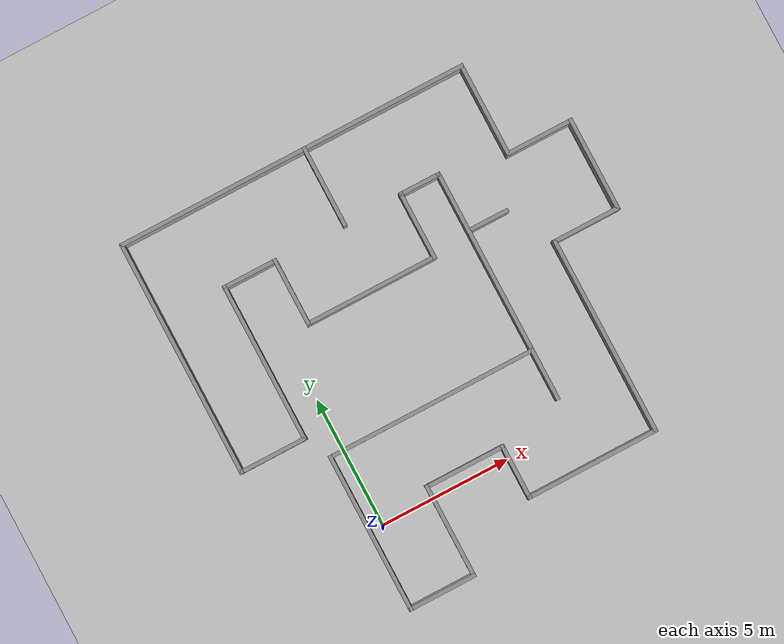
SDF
<sdf version="1.6">
 <world name="default">
  <light name="sun" type="directional">
   <pose>0 0 10 0 -0 0</pose>
   <diffuse>0.8 0.8 0.8 1</diffuse>
   <specular>0.1 0.1 0.1 1</specular>
   <attenuation>
    <range>1000</range>
    <constant>0.9</constant>
    <linear>0.01</linear>
    <quadratic>0.001</quadratic>
   </attenuation>
   <direction>-0.5 0.5 -1</direction>
  </light>
  <model name="ground_plane">
   <static>1</static>
   <link name="link">
    <collision name="collision">
     <geometry><plane><normal>0 0 1</normal><size>100 100</size></plane></geometry>
     <surface><friction><ode><mu>100</mu><mu2>50</mu2></ode></friction></surface>
    </collision>
    <visual name="visual">
     <cast_shadows>0</cast_shadows>
     <geometry><plane><normal>0 0 1</normal><size>100 100</size></plane></geometry>
     <material>
      <script><uri>file://media/materials/scripts/gazebo.material</uri><name>Gazebo/Grey</name></script>
     </material>
    </visual>
   </link>
  </model>
  <gravity>0 0 -9.8</gravity>
  <magnetic_field>6e-06 2.3e-05 -4.2e-05</magnetic_field>
  <atmosphere type="adiabatic"/>
  <physics name="default_physics" default="0" type="ode">
   <max_step_size>0.001</max_step_size>
   <real_time_factor>1</real_time_factor>
   <real_time_update_rate>1000</real_time_update_rate>
  </physics>
  <scene><ambient>0.4 0.4 0.4 1</ambient><background>0.7 0.7 0.7 1</background><shadows>1</shadows></scene>
  <spherical_coordinates>
   <surface_model>EARTH_WGS84</surface_model>
   <latitude_deg>0</latitude_deg>
   <longitude_deg>0</longitude_deg>
   <elevation>0</elevation>
   <heading_deg>0</heading_deg>
  </spherical_coordinates>
  <model name="Untitled2">
   <pose>4.5 4.99999 0 0 -0 0</pose>
   <link name="Wall_12">
    <collision name="Wall_12_Collision">
     <geometry><box><size>3.65 0.15 1</size></box></geometry>
     <pose>0 0 0.5 0 -0 0</pose>
    </collision>
    <visual name="Wall_12_Visual">
     <pose>0 0 0.5 0 -0 0</pose>
     <geometry><box><size>3.65 0.15 1</size></box></geometry>
     <material>
      <script><uri>file://media/materials/scripts/gazebo.material</uri><name>Gazebo/Grey</name></script>
      <ambient>1 1 1 1</ambient>
     </material>
    </visual>
    <pose>-2.5 -6.24999 0 0 0 -1.5708</pose>
   </link>
   <link name="Wall_14">
    <collision name="Wall_14_Collision">
     <geometry><box><size>2.65 0.15 1</size></box></geometry>
     <pose>0 0 0.5 0 -0 0</pose>
    </collision>
    <visual name="Wall_14_Visual">
     <pose>0 0 0.5 0 -0 0</pose>
     <geometry><box><size>2.65 0.15 1</size></box></geometry>
     <material>
      <script><uri>file://media/materials/scripts/gazebo.material</uri><name>Gazebo/Grey</name></script>
      <ambient>1 1 1 1</ambient>
     </material>
    </visual>
    <pose>-3.75 -7.99999 0 0 -0 3.14159</pose>
   </link>
   <link name="Wall_15">
    <collision name="Wall_15_Collision">
     <geometry><box><size>6.15003 0.15 1</size></box></geometry>
     <pose>0 0 0.5 0 -0 0</pose>
    </collision>
    <visual name="Wall_15_Visual">
     <pose>0 0 0.5 0 -0 0</pose>
     <geometry><box><size>6.15003 0.15 1</size></box></geometry>
     <material>
      <script><uri>file://media/materials/scripts/gazebo.material</uri><name>Gazebo/Grey</name></script>
      <ambient>1 1 1 1</ambient>
     </material>
    </visual>
    <pose>-5 -4.99999 0 0 -0 1.5708</pose>
   </link>
   <link name="Wall_18">
    <collision name="Wall_18_Collision">
     <geometry><box><size>8.15 0.15 1</size></box></geometry>
     <pose>0 0 0.5 0 -0 0</pose>
    </collision>
    <visual name="Wall_18_Visual">
     <pose>0 0 0.5 0 -0 0</pose>
     <geometry><box><size>8.15 0.15 1</size></box></geometry>
     <material>
      <script><uri>file://media/materials/scripts/gazebo.material</uri><name>Gazebo/Grey</name></script>
      <ambient>1 1 1 1</ambient>
     </material>
    </visual>
    <pose>-1 -1.99999 0 0 -0 0</pose>
   </link>
   <link name="Wall_19">
    <collision name="Wall_19_Collision">
     <geometry><box><size>7.15 0.15 1</size></box></geometry>
     <pose>0 0 0.5 0 -0 0</pose>
    </collision>
    <visual name="Wall_19_Visual">
     <pose>0 0 0.5 0 -0 0</pose>
     <geometry><box><size>7.15 0.15 1</size></box></geometry>
     <material>
      <script><uri>file://media/materials/scripts/gazebo.material</uri><name>Gazebo/Grey</name></script>
      <ambient>1 1 1 1</ambient>
     </material>
    </visual>
    <pose>3 1.50001 0 0 -0 1.5708</pose>
   </link>
   <link name="Wall_2">
    <collision name="Wall_2_Collision">
     <geometry><box><size>3.15 0.15 1</size></box></geometry>
     <pose>0 0 0.5 0 -0 0</pose>
    </collision>
    <visual name="Wall_2_Visual">
     <pose>0 0 0.5 0 -0 0</pose>
     <geometry><box><size>3.15 0.15 1</size></box></geometry>
     <material>
      <script><uri>file://media/materials/scripts/gazebo.material</uri><name>Gazebo/Grey</name></script>
      <ambient>1 1 1 1</ambient>
     </material>
    </visual>
    <pose>-1 -4.49999 0 0 -0 0</pose>
   </link>
   <link name="Wall_20">
    <collision name="Wall_20_Collision">
     <geometry><box><size>1.65 0.15 1</size></box></geometry>
     <pose>0 0 0.5 0 -0 0</pose>
    </collision>
    <visual name="Wall_20_Visual">
     <pose>0 0 0.5 0 -0 0</pose>
     <geometry><box><size>1.65 0.15 1</size></box></geometry>
     <material>
      <script><uri>file://media/materials/scripts/gazebo.material</uri><name>Gazebo/Grey</name></script>
      <ambient>1 1 1 1</ambient>
     </material>
    </visual>
    <pose>2.25 5.00001 0 0 -0 3.14159</pose>
   </link>
   <link name="Wall_21">
    <collision name="Wall_21_Collision">
     <geometry><box><size>2.65 0.15 1</size></box></geometry>
     <pose>0 0 0.5 0 -0 0</pose>
    </collision>
    <visual name="Wall_21_Visual">
     <pose>0 0 0.5 0 -0 0</pose>
     <geometry><box><size>2.65 0.15 1</size></box></geometry>
     <material>
      <script><uri>file://media/materials/scripts/gazebo.material</uri><name>Gazebo/Grey</name></script>
      <ambient>1 1 1 1</ambient>
     </material>
    </visual>
    <pose>1.5 3.75001 0 0 0 -1.5708</pose>
   </link>
   <link name="Wall_22">
    <collision name="Wall_22_Collision">
     <geometry><box><size>5.15 0.15 1</size></box></geometry>
     <pose>0 0 0.5 0 -0 0</pose>
    </collision>
    <visual name="Wall_22_Visual">
     <pose>0 0 0.5 0 -0 0</pose>
     <geometry><box><size>5.15 0.15 1</size></box></geometry>
     <material>
      <script><uri>file://media/materials/scripts/gazebo.material</uri><name>Gazebo/Grey</name></script>
      <ambient>1 1 1 1</ambient>
     </material>
    </visual>
    <pose>-1 2.50001 0 0 -0 3.14159</pose>
   </link>
   <link name="Wall_23">
    <collision name="Wall_23_Collision">
     <geometry><box><size>2.65 0.15 1</size></box></geometry>
     <pose>0 0 0.5 0 -0 0</pose>
    </collision>
    <visual name="Wall_23_Visual">
     <pose>0 0 0.5 0 -0 0</pose>
     <geometry><box><size>2.65 0.15 1</size></box></geometry>
     <material>
      <script><uri>file://media/materials/scripts/gazebo.material</uri><name>Gazebo/Grey</name></script>
      <ambient>1 1 1 1</ambient>
     </material>
    </visual>
    <pose>-3.5 3.75001 0 0 -0 1.5708</pose>
   </link>
   <link name="Wall_24">
    <collision name="Wall_24_Collision">
     <geometry><box><size>2.15 0.15 1</size></box></geometry>
     <pose>0 0 0.5 0 -0 0</pose>
    </collision>
    <visual name="Wall_24_Visual">
     <pose>0 0 0.5 0 -0 0</pose>
     <geometry><box><size>2.15 0.15 1</size></box></geometry>
     <material>
      <script><uri>file://media/materials/scripts/gazebo.material</uri><name>Gazebo/Grey</name></script>
      <ambient>1 1 1 1</ambient>
     </material>
    </visual>
    <pose>-4.5 5.00001 0 0 -0 3.14159</pose>
   </link>
   <link name="Wall_25">
    <collision name="Wall_25_Collision">
     <geometry><box><size>6.15 0.15 1</size></box></geometry>
     <pose>0 0 0.5 0 -0 0</pose>
    </collision>
    <visual name="Wall_25_Visual">
     <pose>0 0 0.5 0 -0 0</pose>
     <geometry><box><size>6.15 0.15 1</size></box></geometry>
     <material>
      <script><uri>file://media/materials/scripts/gazebo.material</uri><name>Gazebo/Grey</name></script>
      <ambient>1 1 1 1</ambient>
     </material>
    </visual>
    <pose>-5.5 2.00001 0 0 0 -1.5708</pose>
   </link>
   <link name="Wall_26">
    <collision name="Wall_26_Collision">
     <geometry><box><size>2.65 0.15 1</size></box></geometry>
     <pose>0 0 0.5 0 -0 0</pose>
    </collision>
    <visual name="Wall_26_Visual">
     <pose>0 0 0.5 0 -0 0</pose>
     <geometry><box><size>2.65 0.15 1</size></box></geometry>
     <material>
      <script><uri>file://media/materials/scripts/gazebo.material</uri><name>Gazebo/Grey</name></script>
      <ambient>1 1 1 1</ambient>
     </material>
    </visual>
    <pose>-6.75 -0.999993 0 0 -0 3.14159</pose>
   </link>
   <link name="Wall_27">
    <collision name="Wall_27_Collision">
     <geometry><box><size>9.15 0.15 1</size></box></geometry>
     <pose>0 0 0.5 0 -0 0</pose>
    </collision>
    <visual name="Wall_27_Visual">
     <pose>0 0 0.5 0 -0 0</pose>
     <geometry><box><size>9.15 0.15 1</size></box></geometry>
     <material>
      <script><uri>file://media/materials/scripts/gazebo.material</uri><name>Gazebo/Grey</name></script>
      <ambient>1 1 1 1</ambient>
     </material>
    </visual>
    <pose>-8 3.50001 0 0 -0 1.5708</pose>
   </link>
   <link name="Wall_28">
    <collision name="Wall_28_Collision">
     <geometry><box><size>13.65 0.15 1</size></box></geometry>
     <pose>0 0 0.5 0 -0 0</pose>
    </collision>
    <visual name="Wall_28_Visual">
     <pose>0 0 0.5 0 -0 0</pose>
     <geometry><box><size>13.65 0.15 1</size></box></geometry>
     <material>
      <script><uri>file://media/materials/scripts/gazebo.material</uri><name>Gazebo/Grey</name></script>
      <ambient>1 1 1 1</ambient>
     </material>
    </visual>
    <pose>-1.25 8.00001 0 0 -0 0</pose>
   </link>
   <link name="Wall_3">
    <collision name="Wall_3_Collision">
     <geometry><box><size>2.15 0.15 1</size></box></geometry>
     <pose>0 0 0.5 0 -0 0</pose>
    </collision>
    <visual name="Wall_3_Visual">
     <pose>0 0 0.5 0 -0 0</pose>
     <geometry><box><size>2.15 0.15 1</size></box></geometry>
     <material>
      <script><uri>file://media/materials/scripts/gazebo.material</uri><name>Gazebo/Grey</name></script>
      <ambient>1 1 1 1</ambient>
     </material>
    </visual>
    <pose>0.5 -5.49999 0 0 0 -1.5708</pose>
   </link>
   <link name="Wall_30">
    <collision name="Wall_30_Collision">
     <geometry><box><size>2.05 0.15 1</size></box></geometry>
     <pose>0 0 0.5 0 -0 0</pose>
    </collision>
    <visual name="Wall_30_Visual">
     <pose>0 0 0.5 0 -0 0</pose>
     <geometry><box><size>2.05 0.15 1</size></box></geometry>
     <material>
      <script><uri>file://media/materials/scripts/gazebo.material</uri><name>Gazebo/Grey</name></script>
      <ambient>1 1 1 1</ambient>
     </material>
    </visual>
    <pose>3 -2.94999 0 0 0 -1.5708</pose>
   </link>
   <link name="Wall_32">
    <collision name="Wall_32_Collision">
     <geometry><box><size>1.65 0.15 1</size></box></geometry>
     <pose>0 0 0.5 0 -0 0</pose>
    </collision>
    <visual name="Wall_32_Visual">
     <pose>0 0 0.5 0 -0 0</pose>
     <geometry><box><size>1.65 0.15 1</size></box></geometry>
     <material>
      <script><uri>file://media/materials/scripts/gazebo.material</uri><name>Gazebo/Grey</name></script>
      <ambient>1 1 1 1</ambient>
     </material>
    </visual>
    <pose>3.75 2.75001 0 0 -0 0</pose>
   </link>
   <link name="Wall_34">
    <collision name="Wall_34_Collision">
     <geometry><box><size>3.15 0.15 1</size></box></geometry>
     <pose>0 0 0.5 0 -0 0</pose>
    </collision>
    <visual name="Wall_34_Visual">
     <pose>0 0 0.5 0 -0 0</pose>
     <geometry><box><size>3.15 0.15 1</size></box></geometry>
     <material>
      <script><uri>file://media/materials/scripts/gazebo.material</uri><name>Gazebo/Grey</name></script>
      <ambient>1 1 1 1</ambient>
     </material>
    </visual>
    <pose>-0.75 6.50001 0 0 -0 1.5708</pose>
   </link>
   <link name="Wall_4">
    <collision name="Wall_4_Collision">
     <geometry><box><size>5.15 0.15 1</size></box></geometry>
     <pose>0 0 0.5 0 -0 0</pose>
    </collision>
    <visual name="Wall_4_Visual">
     <pose>0 0 0.5 0 -0 0</pose>
     <geometry><box><size>5.15 0.15 1</size></box></geometry>
     <material>
      <script><uri>file://media/materials/scripts/gazebo.material</uri><name>Gazebo/Grey</name></script>
      <ambient>1 1 1 1</ambient>
     </material>
    </visual>
    <pose>3 -6.49999 0 0 -0 0</pose>
   </link>
   <link name="Wall_5">
    <collision name="Wall_5_Collision">
     <geometry><box><size>7.65 0.15 1</size></box></geometry>
     <pose>0 0 0.5 0 -0 0</pose>
    </collision>
    <visual name="Wall_5_Visual">
     <pose>0 0 0.5 0 -0 0</pose>
     <geometry><box><size>7.65 0.15 1</size></box></geometry>
     <material>
      <script><uri>file://media/materials/scripts/gazebo.material</uri><name>Gazebo/Grey</name></script>
      <ambient>1 1 1 1</ambient>
     </material>
    </visual>
    <pose>5.5 -2.74999 0 0 -0 1.5708</pose>
   </link>
   <link name="Wall_6">
    <collision name="Wall_6_Collision">
     <geometry><box><size>2.65 0.15 1</size></box></geometry>
     <pose>0 0 0.5 0 -0 0</pose>
    </collision>
    <visual name="Wall_6_Visual">
     <pose>0 0 0.5 0 -0 0</pose>
     <geometry><box><size>2.65 0.15 1</size></box></geometry>
     <material>
      <script><uri>file://media/materials/scripts/gazebo.material</uri><name>Gazebo/Grey</name></script>
      <ambient>1 1 1 1</ambient>
     </material>
    </visual>
    <pose>6.75 1.00001 0 0 -0 0</pose>
   </link>
   <link name="Wall_7">
    <collision name="Wall_7_Collision">
     <geometry><box><size>3.65 0.15 1</size></box></geometry>
     <pose>0 0 0.5 0 -0 0</pose>
    </collision>
    <visual name="Wall_7_Visual">
     <pose>0 0 0.5 0 -0 0</pose>
     <geometry><box><size>3.65 0.15 1</size></box></geometry>
     <material>
      <script><uri>file://media/materials/scripts/gazebo.material</uri><name>Gazebo/Grey</name></script>
      <ambient>1 1 1 1</ambient>
     </material>
    </visual>
    <pose>8 2.75001 0 0 -0 1.5708</pose>
   </link>
   <link name="Wall_8">
    <collision name="Wall_8_Collision">
     <geometry><box><size>2.65 0.15 1</size></box></geometry>
     <pose>0 0 0.5 0 -0 0</pose>
    </collision>
    <visual name="Wall_8_Visual">
     <pose>0 0 0.5 0 -0 0</pose>
     <geometry><box><size>2.65 0.15 1</size></box></geometry>
     <material>
      <script><uri>file://media/materials/scripts/gazebo.material</uri><name>Gazebo/Grey</name></script>
      <ambient>1 1 1 1</ambient>
     </material>
    </visual>
    <pose>6.75 4.50001 0 0 -0 3.14159</pose>
   </link>
   <link name="Wall_9">
    <collision name="Wall_9_Collision">
     <geometry><box><size>3.65 0.15 1</size></box></geometry>
     <pose>0 0 0.5 0 -0 0</pose>
    </collision>
    <visual name="Wall_9_Visual">
     <pose>0 0 0.5 0 -0 0</pose>
     <geometry><box><size>3.65 0.15 1</size></box></geometry>
     <material>
      <script><uri>file://media/materials/scripts/gazebo.material</uri><name>Gazebo/Grey</name></script>
      <ambient>1 1 1 1</ambient>
     </material>
    </visual>
    <pose>5.5 6.25001 0 0 -0 1.5708</pose>
   </link>
   <static>1</static>
  </model>
 </world>
</sdf>
